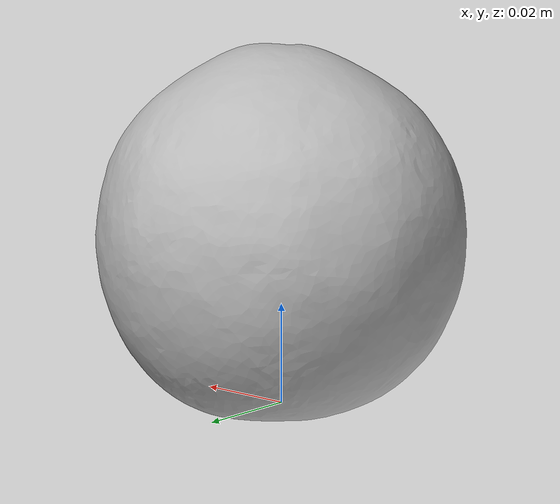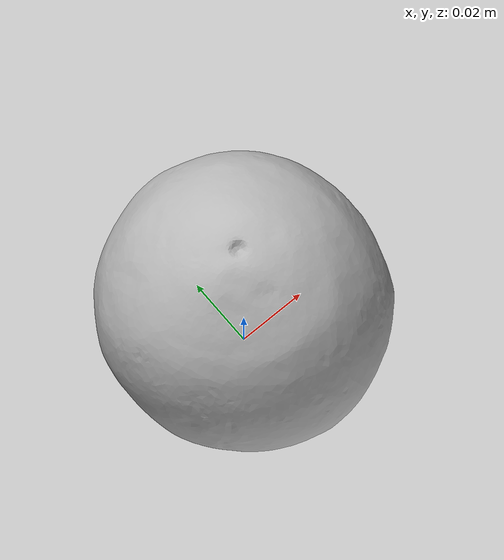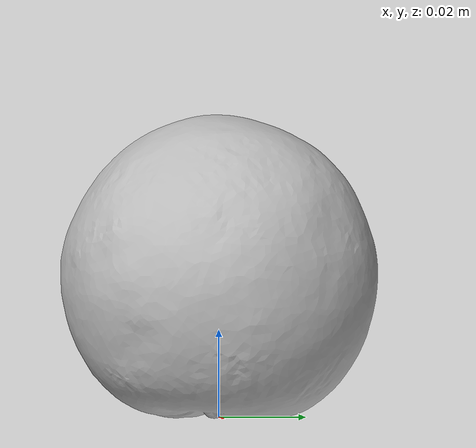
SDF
<?xml version="1.0" ?>
<sdf version='1.8'>
  <model name='ycb_017_orange'>
    <link name='body'>
      <inertial>
        <mass>0.047</mass>
        <pose>-0.000133269062 6.573723e-05 0.0336676437 0 0 0</pose>
        <inertia>
          <ixx>2.53392545026e-05</ixx>
          <ixy>-8.73591591801e-08</ixy>
          <ixz>1.79791448129e-07</ixz>
          <iyy>2.47331298214e-05</iyy>
          <iyz>-7.47107826553e-08</iyz>
          <izz>2.49621977814e-05</izz>
        </inertia>
      </inertial>
      <visual name='ycb_017_orange_visual'>
        <pose>0.007009 0.018434 3.4e-05 0 0 0</pose>
        <geometry>
          <mesh>
            <uri>model://ycb_017_orange/meshes/textured.dae</uri>
          </mesh>
        </geometry>
      </visual>
      <collision name='ycb_017_orange_collision'>
        <pose>0.007009 0.018434 3.4e-05 0 0 0</pose>
        <geometry>
          <mesh>
            <uri>model://ycb_017_orange/meshes/nontextured.stl</uri>
          </mesh>
        </geometry>
        <max_contacts>10</max_contacts>
        <surface>
          <contact>
            <ode>
              <kp>1e15</kp>
              <kd>1e13</kd>
            </ode>
          </contact>
        </surface>
      </collision>
    </link>
  </model>
</sdf>
